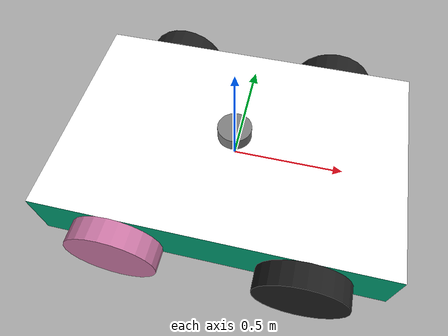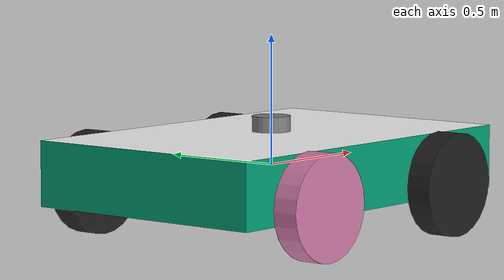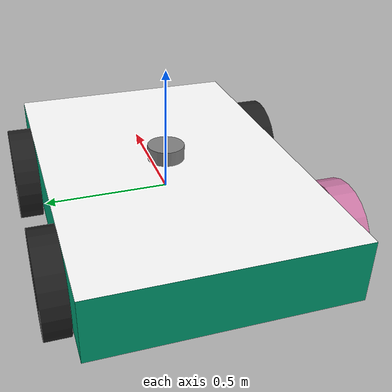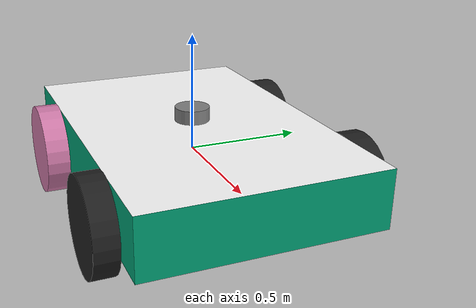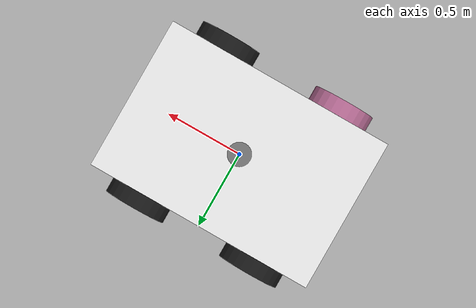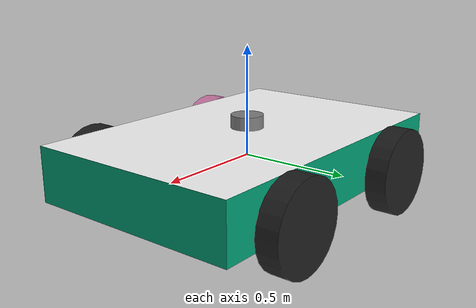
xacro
<?xml version="1.0"?>
<robot xmlns:xacro="http://www.ros.org/wiki/xacro" name="diffbot">

    <xacro:include filename="$(find diffbot)/urdf/materials.xacro"/>
    <xacro:include filename="$(find diffbot)/urdf/inertia.xacro"/>
    <xacro:include filename="$(find diffbot)/urdf/gazebo.xacro"/>

    <link name="base_footprint"/>

    <link name="base_link"/>

    <joint name="base_joint" type="fixed">
        <parent link="base_footprint"/>
        <child link="base_link"/>
        <origin xyz="0 0 0" rpy="0 0 0.0" />
    </joint>

    <link name="chassis_link">

        <collision>
            <origin xyz="0 0 0" rpy="0 0 0" />
            <geometry>
                <box size="1.0 1.5 0.3"/>
            </geometry>
        </collision>

        <visual>
            <origin xyz="0 0 0" rpy="0 0 0" />
            <geometry>
                <mesh filename="file://$(find diffbot)/meshes/body_nokiya.dae" scale="1 1 1"/>
            </geometry>
        </visual>

        <inertial>
            <mass value="1.0" />
            <xacro:box_inertia m="1.0" x="1.0" y="1.5" z = "0.3"/>
        </inertial>

    </link>

    <joint name="chassis_joint" type="fixed">
        <parent link="base_link"/>
        <child link="chassis_link"/>
        <origin xyz="0.0 0 0" rpy="0 0 0.0" />
    </joint>

    <!-- Left Wheels -->
    <link name="front_left_wheel">

        <collision>
            <origin xyz="0 0 0" rpy="1.57 0 0" />
            <geometry>
                <cylinder radius="0.2" length="0.1"/>
            </geometry>
        </collision>

        <visual>
            <origin xyz="0 0 0" rpy="1.57 0 0" />
            <geometry>
                <cylinder radius="0.2" length="0.1"/>
            </geometry>
        </visual>

        <inertial>
            <mass value="0.5"/>
            <xacro:cylinder_inertia m="0.5" r="-0.2" h="0.1"/>
        </inertial>

    </link>

    <joint name="front_left_wheel_joint" type="continuous">
        <parent link="chassis_link"/>
        <child link="front_left_wheel"/>
        <origin xyz="0.4 0.55 -0.07" rpy="0 0 0" />
        <axis xyz="0.0 1.0 0.0"/>
    </joint>

    <link name="rear_left_wheel">
        <collision>
            <origin xyz="0 0 0" rpy="1.57 0 0" />
            <geometry>
                <cylinder radius="0.2" length="0.1"/>
            </geometry>
        </collision>

        <visual>
            <origin xyz="0 0 0" rpy="1.57 0 0" />
            <geometry>
                <cylinder radius="0.2" length="0.1"/>
            </geometry>
        </visual>

        <inertial>
            <mass value="0.5"/>
            <xacro:cylinder_inertia m="0.5" r="-0.2" h="0.1"/>
        </inertial>

    </link>

    <joint name="rear_left_wheel_joint" type="continuous"> <!--continuous-->
        <parent link="chassis_link"/>
        <child link="rear_left_wheel"/>
        <origin xyz="-0.4 0.55 -0.07" rpy="0 0 0" />
        <axis xyz="0.0 1.0 0.0"/>
    </joint>

    <!-- Right Wheels -->
    <link name="front_right_wheel">

        <collision>
            <origin xyz="0 0 0" rpy="1.57 0 0" />
            <geometry>
                <cylinder radius="0.2" length="0.1"/>
            </geometry>
        </collision>

        <visual>
            <origin xyz="0 0 0" rpy="1.57 0 0" />
            <geometry>
                <cylinder radius="0.2" length="0.1"/>
            </geometry>
        </visual>

        <inertial>
            <mass value="0.5"/>
            <xacro:cylinder_inertia m="0.5" r="-0.2" h="0.1"/>
        </inertial>

    </link>

    <joint name="front_right_wheel_joint" type="continuous">
        <parent link="chassis_link"/>
        <child link="front_right_wheel"/>
        <origin xyz="0.4 -0.55 -0.07" rpy="0 0 0" />
        <axis xyz="0.0 1.0 0.0"/>
    </joint>

    <link name="rear_right_wheel">
        <collision>
            <origin xyz="0 0 0" rpy="1.57 0 0" />
            <geometry>
                <cylinder radius="0.2" length="0.1"/>
            </geometry>
        </collision>

        <visual>
            <origin xyz="0 0 0" rpy="1.57 0 0" />
            <geometry>
                <cylinder radius="0.2" length="0.1"/>
            </geometry>
        </visual>

        <inertial>
            <mass value="0.5"/>
            <xacro:cylinder_inertia m="0.5" r="-0.2" h="0.1"/>
        </inertial>

    </link>

    <joint name="rear_right_wheel_joint" type="continuous"> <!--continuous-->
        <parent link="chassis_link"/>
        <child link="rear_right_wheel"/>
        <origin xyz="-0.4 -0.55 -0.07" rpy="0 0 0" />
        <axis xyz="0.0 1.0 0.0"/>
    </joint>

    <gazebo reference="front_left_wheel">
        <material>Gazebo/Black</material>
    </gazebo>

    <gazebo reference="front_right_wheel">
        <material>Gazebo/Black</material>
    </gazebo>

    <gazebo reference="rear_left_wheel">
        <material>Gazebo/Black</material>
    </gazebo>

    <gazebo reference="rear_front_wheel">
        <material>Gazebo/Black</material>
    </gazebo>

    <!-- ............................. 2D LIDAR ........................................ -->

    <link name="two_d_lidar">
        <collision>
            <origin xyz="0 0 0" rpy="0 0 0" />
            <geometry>
                <cylinder length="0.06" radius="0.075"/>
            </geometry>
        </collision>

        <visual>
            <origin xyz="0 0 0" rpy="0 0 0" />
            <geometry>
                <cylinder length="0.06" radius="0.075"/>
            </geometry>
            <material name="aluminium"/>
        </visual>

        <inertial>
            <origin xyz="0 0 0" rpy="0 0 0" />
            <mass value="0.1"/>
            <xacro:cylinder_inertia m="0.1" r="0.075" h="0.06"/>
        </inertial>
    </link>

    <joint name="two_d_lidar_joint" type="fixed">
        <parent link="chassis_link"/>
        <child link="two_d_lidar"/>
        <origin xyz="0.0 0 0.16" rpy="0 0 0" />
    </joint>

    <gazebo reference="two_d_lidar">
        <material>Gazebo/White</material>
    </gazebo>

    <!-- ............................. IMU ........................................ -->

    <link name="imu_frame"/>

    <joint name="imu_joint" type="fixed">
        <parent link="base_link"/>
        <child link="imu_frame"/>
        <origin xyz="0.0 0.0 0.16" rpy="0.0 0.0 0.0"/>
    </joint>

</robot>

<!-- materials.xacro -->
<robot xmlns:xacro="http://www.ros.org/wiki/xacro" name="bcr_bot">

    <material name="black">
        <color rgba="0.0 0.0 0.0 1.0"/>
    </material>

    <material name="blue">
        <color rgba="0.0 0.0 0.8 1.0"/>
    </material>

    <material name="green">
        <color rgba="0.0 0.8 0.0 1.0"/>
    </material>

    <material name="yellow">
        <color rgba="1.0 1.0 0.0 1.0"/>
    </material>

    <material name="dark_grey">
        <color rgba="0.2 0.2 0.2 1.0"/>
    </material>

    <material name="orange">
        <color rgba="${255/255} ${108/255} ${10/255} 1.0"/>
    </material>

    <material name="brown">
        <color rgba="${139/255} ${69/255} ${19/255} 1.0"/>
    </material>

    <material name="red">
        <color rgba="0.8 0.0 0.0 1.0"/>
    </material>

    <material name="turquoise">
        <color rgba="${64/255} ${224/255} ${208/255} 1.0"/>
    </material>

    <material name="purple">
        <color rgba="${128/255} ${0/255} ${128/255} 1.0"/>
    </material>

    <material name="white">
        <color rgba="1.0 1.0 1.0 1.0"/>
    </material>

    <material name="aluminium">
        <color rgba="0.5 0.5 0.5 1"/>
    </material>

    <material name="plastic">
        <color rgba="0.1 0.1 0.1 1"/>
    </material>

    <material name ='wooden'>
        <color rgba='0.76 0.60 0.024 1'/>
    </material>

</robot>

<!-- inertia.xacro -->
<robot xmlns:xacro="http://www.ros.org/wiki/xacro" name="diffbot">

    <!--................................ INERTIA MATRICES .............................. -->

    <xacro:macro name="cylinder_inertia" params="m r h">
        <inertia ixx="${m * (3 * r * r + h * h) / 12}" ixy="0" ixz="0" iyy="${m * (3 * r * r + h * h) / 12}" iyz="0" izz="${m * r * r / 2}" />
    </xacro:macro>

    <xacro:macro name="box_inertia" params="m x y z">
        <inertia ixx="${m * (y * y + z * z) / 12}" ixy="0" ixz="0" iyy="${m * (x * x + z * z) / 12}" iyz="0" izz="${m * (y * y + x * x) / 12}" />
    </xacro:macro>

    <xacro:macro name="sphere_inertia" params="m r">
        <inertia ixx="${2 * m * r * r / 5}" ixy="0" ixz="0" iyy="${2 * m * r * r / 5}" iyz="0" izz="${2 * m * r * r / 5}" />
    </xacro:macro>
</robot>
